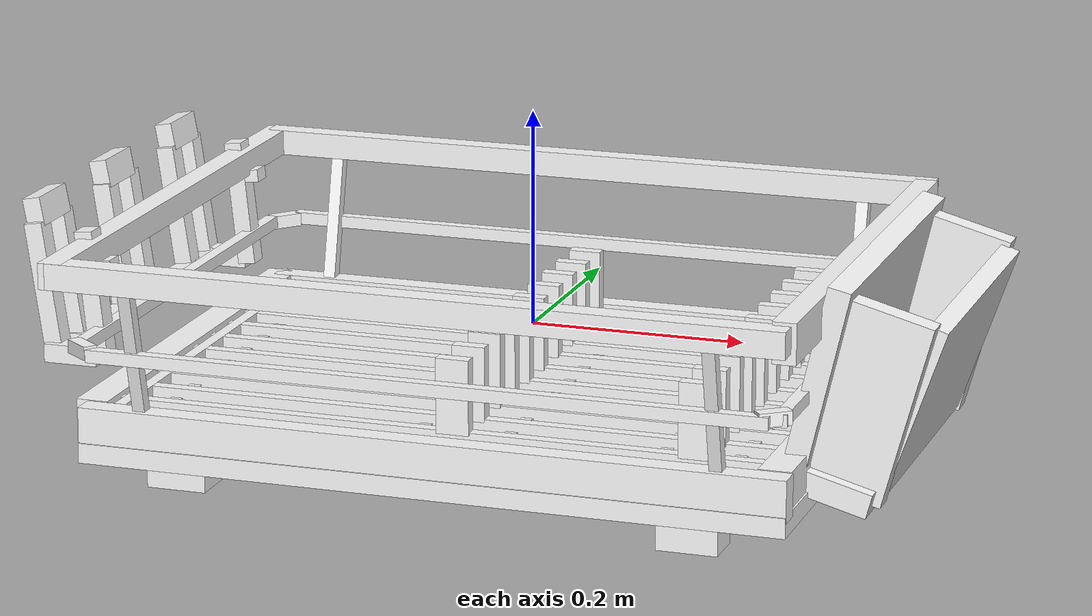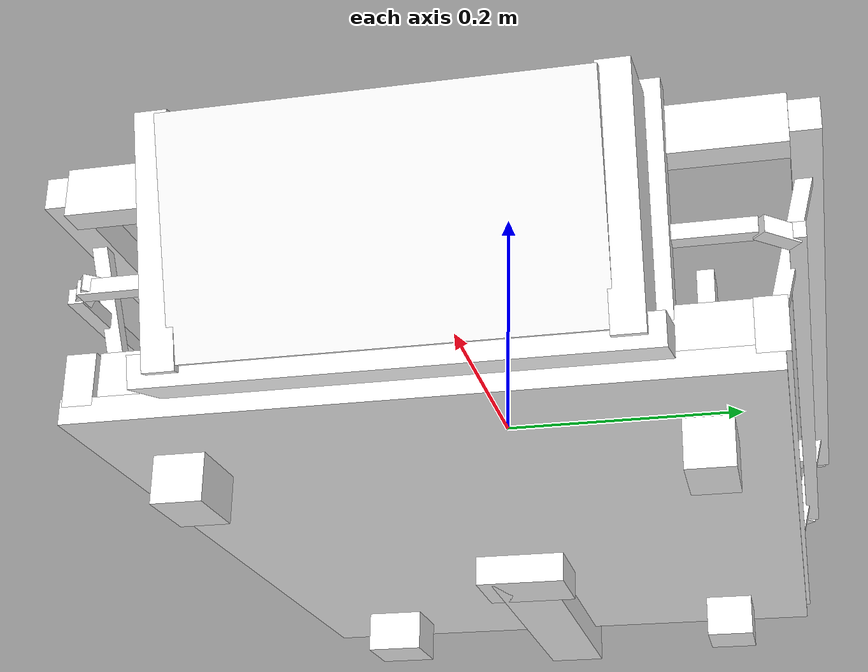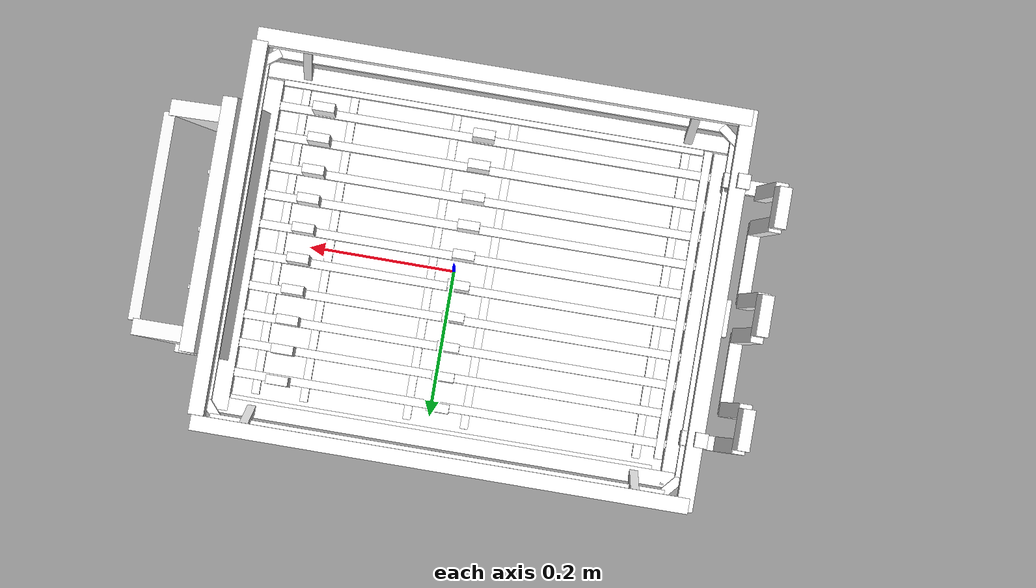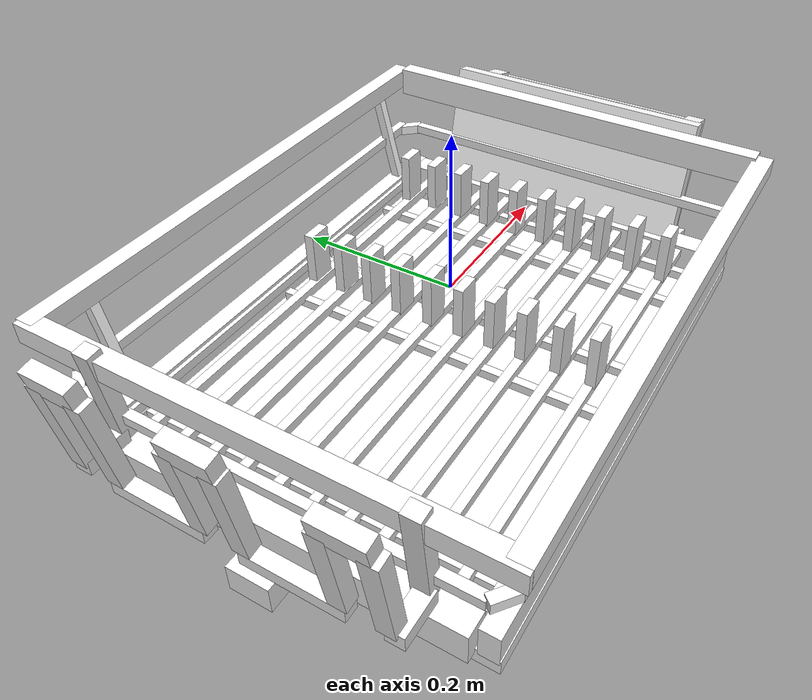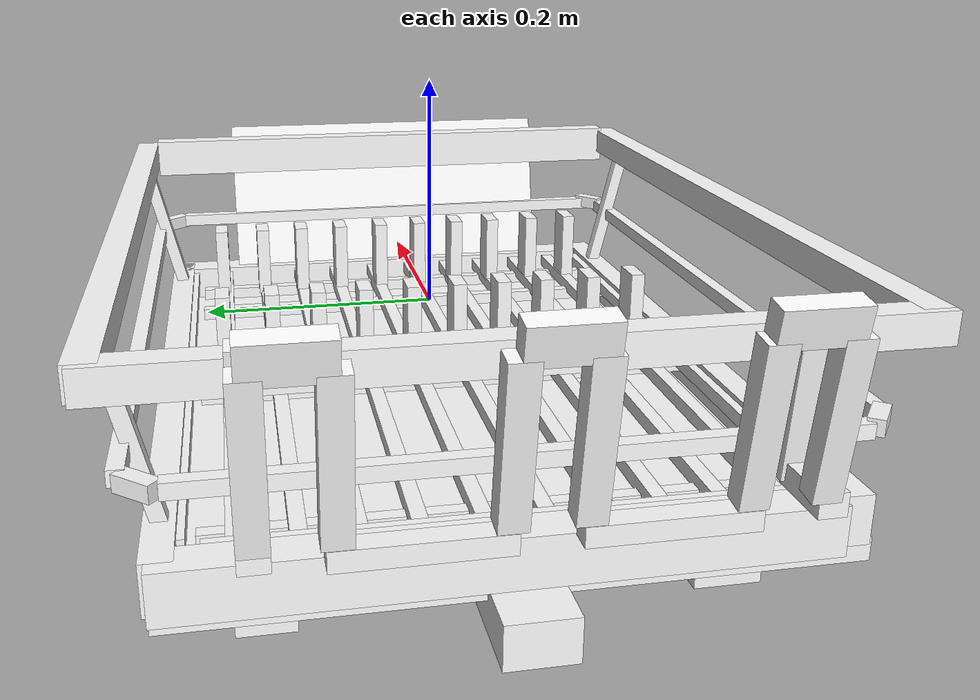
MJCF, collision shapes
<?xml version='1.0' encoding='utf-8'?>
<mujoco model="model">
  <option timestep="0.002" gravity="0.0 0.0 -9.81" />
  <compiler angle="radian" />
  <asset>
    <mesh file="visual/DishRack047.obj" name="DishRack047_vis" />
    <texture file="visual/T_BC001.png" name="DishRack047_material" type="2d" />
    <material name="DishRack047_material" rgba="1 1 1 1.0" texture="DishRack047_material" shininess="0.4472135901451111" specular="0.3103448502657381" />
  </asset>
  <default>
    <default class="visual">
      <geom conaffinity="0" contype="0" group="1" type="mesh" />
    </default>
    <default class="collision">
      <geom group="0" rgba="1 1 1 0.25" density="1.0" solref="0.004 1" solimp="0.998 0.998 0.001" />
    </default>
    <default class="spawn">
      <geom group="0" rgba="1 1 1 0.5" contype="0" conaffinity="0" />
      <site group="0" rgba="1 1 1 0.5" />
    </default>
    <default class="region">
      <geom group="1" conaffinity="0" contype="0" rgba="0 1 0 0" mass="0" />
    </default>
  </default>
  <worldbody>
    <body>
      <body name="object">
        <geom mesh="DishRack047_vis" type="mesh" solimp="0.998 0.998 0.001" solref="0.001 1" friction="0.95 0.3 0.1" class="visual" material="DishRack047_material" />
        <geom type="box" pos="-0.01842450 -0.25464301 0.01038383" size="0.31351131200790405 0.005834067706018686 0.005834091920405626" quat="1.0 0.0 0.0 0.0" class="collision" />
        <geom type="box" pos="-0.01842450 0.25205340 0.01038383" size="0.31351131200790405 0.005834067706018686 0.005834091920405626" quat="1.0 0.0 0.0 0.0" class="collision" />
        <geom type="box" pos="-0.02107439 -0.19016211 -0.05196834" size="0.3136478066444397 0.005834067706018686 0.005834091920405626" quat="1.0 0.0 0.0 0.0" class="collision" />
        <geom type="box" pos="-0.02107439 -0.14864702 -0.05196834" size="0.3136478066444397 0.005834067706018686 0.005834091920405626" quat="1.0 0.0 0.0 0.0" class="collision" />
        <geom type="box" pos="-0.02107439 -0.10536533 -0.05196834" size="0.3136478066444397 0.005834067706018686 0.005834091920405626" quat="1.0 0.0 0.0 0.0" class="collision" />
        <geom type="box" pos="-0.02107439 -0.06561684 -0.05196834" size="0.3136478066444397 0.005834067706018686 0.005834091920405626" quat="1.0 0.0 0.0 0.0" class="collision" />
        <geom type="box" pos="-0.02107439 -0.02410176 -0.05196834" size="0.3136478066444397 0.005834067706018686 0.005834091920405626" quat="1.0 0.0 0.0 0.0" class="collision" />
        <geom type="box" pos="-0.02107439 0.01917992 -0.05196834" size="0.3136478066444397 0.005834067706018686 0.005834091920405626" quat="1.0 0.0 0.0 0.0" class="collision" />
        <geom type="box" pos="-0.02107439 0.06246161 -0.05196834" size="0.3136478066444397 0.005834067706018686 0.005834091920405626" quat="1.0 0.0 0.0 0.0" class="collision" />
        <geom type="box" pos="-0.02107439 0.10309339 -0.05196834" size="0.3136478066444397 0.005834067706018686 0.005834091920405626" quat="1.0 0.0 0.0 0.0" class="collision" />
        <geom type="box" pos="-0.02107439 0.14284188 -0.05196834" size="0.3136478066444397 0.005834067706018686 0.005834091920405626" quat="1.0 0.0 0.0 0.0" class="collision" />
        <geom type="box" pos="-0.02107439 0.18435696 -0.05196834" size="0.3136478066444397 0.005834067706018686 0.005834091920405626" quat="1.0 0.0 0.0 0.0" class="collision" />
        <geom type="box" pos="-0.01842450 0.22145555 -0.05196834" size="0.29465436935424805 0.005834067706018686 0.005834090523421764" quat="1.0 0.0 0.0 0.0" class="collision" />
        <geom type="box" pos="-0.01842450 -0.22461077 -0.05196834" size="0.29465436935424805 0.005834067706018686 0.005834090523421764" quat="1.0 0.0 0.0 0.0" class="collision" />
        <geom type="box" pos="-0.34883966 -0.00535722 0.01038383" size="0.005834077950567007 0.23112908005714417 0.005834108684211969" quat="1.0 0.0 0.0 0.0" class="collision" />
        <geom type="box" pos="0.30227233 -0.00996897 0.01038383" size="0.005834077950567007 0.2374911606311798 0.005834109149873257" quat="1.0 0.0 0.0 0.0" class="collision" />
        <geom type="box" pos="-0.31975456 -0.00996897 -0.05151568" size="0.005498509854078293 0.21582086384296417 0.005498501472175121" quat="1.0 0.0 0.0 0.0" class="collision" />
        <geom type="box" pos="0.28354795 -0.00996897 -0.05151568" size="0.005498509854078293 0.1907721310853958 0.005498520564287901" quat="1.0 0.0 0.0 0.0" class="collision" />
        <geom type="box" pos="-0.01842450 -0.00529234 -0.08422913" size="0.3273940682411194 0.2449447512626648 0.009237930178642273" quat="1.0 0.0 0.0 0.0" class="collision" />
        <geom type="box" pos="-0.22997113 -0.00347817 -0.10153956" size="0.15821781754493713 0.02618318237364292 0.017212456092238426" quat="1.0 0.0 0.0 0.0" class="collision" />
        <geom type="box" pos="-0.35655807 -0.00347817 0.08507566" size="0.010985566303133965 0.27316945791244507 0.012074650265276432" quat="1.0 0.0 0.0 0.0" class="collision" />
        <geom type="box" pos="0.30725728 -0.00347817 0.08171169" size="0.010746297426521778 0.25485026836395264 0.018494954332709312" quat="1.0 0.0 0.0 0.0" class="collision" />
        <geom type="box" pos="-0.02417593 -0.26538877 0.08507566" size="0.33746522665023804 0.011394654400646687 0.01207468006759882" quat="1.0 0.0 0.0 0.0" class="collision" />
        <geom type="box" pos="-0.02417593 0.26211025 0.08507566" size="0.33746442198753357 0.010648323222994804 0.01207468006759882" quat="1.0 0.0 0.0 0.0" class="collision" />
        <geom type="box" pos="-0.00915554 -0.19201827 -0.01398426" size="0.015245569869875908 0.00621932465583086 0.034603312611579895" quat="1.0 0.0 0.0 0.0" class="collision" />
        <geom type="box" pos="-0.00915554 -0.14936109 -0.01398426" size="0.015245569869875908 0.00621932465583086 0.034603316336870193" quat="1.0 0.0 0.0 0.0" class="collision" />
        <geom type="box" pos="-0.00915554 -0.10518305 -0.01398426" size="0.015245569869875908 0.00621932465583086 0.034603316336870193" quat="1.0 0.0 0.0 0.0" class="collision" />
        <geom type="box" pos="-0.00915554 -0.06500799 -0.01398426" size="0.015245569869875908 0.00621932465583086 0.03460332006216049" quat="1.0 0.0 0.0 0.0" class="collision" />
        <geom type="box" pos="-0.00915554 -0.02404182 -0.01398426" size="0.015245569869875908 0.00621932465583086 0.03460332006216049" quat="1.0 0.0 0.0 0.0" class="collision" />
        <geom type="box" pos="-0.00915554 0.01795158 -0.01398426" size="0.015245569869875908 0.00621932465583086 0.03460332378745079" quat="1.0 0.0 0.0 0.0" class="collision" />
        <geom type="box" pos="-0.00915554 0.06150653 -0.01398426" size="0.015245569869875908 0.00621932465583086 0.03460332378745079" quat="1.0 0.0 0.0 0.0" class="collision" />
        <geom type="box" pos="-0.00915554 0.10345149 -0.01398426" size="0.015245569869875908 0.00621932465583086 0.03460332751274109" quat="1.0 0.0 0.0 0.0" class="collision" />
        <geom type="box" pos="-0.00915554 0.14436329 -0.01398426" size="0.015245569869875908 0.00621932465583086 0.03460332751274109" quat="1.0 0.0 0.0 0.0" class="collision" />
        <geom type="box" pos="-0.00915554 0.18726097 -0.01398426" size="0.015245569869875908 0.00621932465583086 0.03460333123803139" quat="1.0 0.0 0.0 0.0" class="collision" />
        <geom type="box" pos="0.21316355 -0.19201827 -0.01398426" size="0.015245569869875908 0.00621932465583086 0.03460333123803139" quat="1.0 0.0 0.0 0.0" class="collision" />
        <geom type="box" pos="0.21316355 -0.14936109 -0.01398426" size="0.015245569869875908 0.00621932465583086 0.034603334963321686" quat="1.0 0.0 0.0 0.0" class="collision" />
        <geom type="box" pos="0.21316355 -0.10518305 -0.01398426" size="0.015245569869875908 0.00621932465583086 0.034603338688611984" quat="1.0 0.0 0.0 0.0" class="collision" />
        <geom type="box" pos="0.21316355 -0.06500799 -0.01398426" size="0.015245569869875908 0.00621932465583086 0.034603338688611984" quat="1.0 0.0 0.0 0.0" class="collision" />
        <geom type="box" pos="0.21316355 -0.02404182 -0.01398426" size="0.015245569869875908 0.00621932465583086 0.03460334241390228" quat="1.0 0.0 0.0 0.0" class="collision" />
        <geom type="box" pos="0.21316355 0.01795158 -0.01398426" size="0.015245569869875908 0.00621932465583086 0.03460334241390228" quat="1.0 0.0 0.0 0.0" class="collision" />
        <geom type="box" pos="0.21316355 0.06150653 -0.01398426" size="0.015245569869875908 0.00621932465583086 0.03460334613919258" quat="1.0 0.0 0.0 0.0" class="collision" />
        <geom type="box" pos="0.21316355 0.10345149 -0.01398426" size="0.015245569869875908 0.00621932465583086 0.03460334613919258" quat="1.0 0.0 0.0 0.0" class="collision" />
        <geom type="box" pos="0.21316355 0.14436329 -0.01398426" size="0.015245569869875908 0.00621932465583086 0.03460334986448288" quat="1.0 0.0 0.0 0.0" class="collision" />
        <geom type="box" pos="0.21316355 0.18726097 -0.01398426" size="0.015245569869875908 0.00621932465583086 0.03460334986448288" quat="1.0 0.0 0.0 0.0" class="collision" />
        <geom type="box" pos="0.31265061 -0.00266849 0.01948240" size="0.010746296495199203 0.17341545224189758 0.09098540246486664" quat="0.9935942888259888 -6.35997176605174e-16 0.11300608515739441 1.5183358570425298e-08" class="collision" />
        <geom type="box" pos="0.38699959 -0.00266848 -0.00431848" size="0.008785261772572994 0.1425880491733551 0.08074815571308136" quat="0.9861871004104614 -2.8458485906907895e-15 0.16563507914543152 2.2254532439092145e-08" class="collision" />
        <geom type="box" pos="0.33145545 -0.00266850 -0.07450730" size="0.03273314610123634 0.17341545224189758 0.011176123283803463" quat="0.9911223649978638 -1.0421047673558637e-16 0.13295304775238037 1.7863408530160996e-08" class="collision" />
        <geom type="box" pos="0.35299058 -0.15169284 0.00486462" size="0.04007335007190704 0.011243214830756187 0.08515150845050812" quat="0.9913440346717834 -6.42913624135979e-16 0.13128969073295593 1.763993040526657e-08" class="collision" />
        <geom type="box" pos="0.21046819 0.18493499 -0.10977878" size="0.028036130592226982 0.017754610627889633 0.02026299759745598" quat="1.0 0.0 0.0 0.0" class="collision" />
        <geom type="box" pos="0.21046819 -0.19190778 -0.10977878" size="0.028036070987582207 0.01948544569313526 0.02026299759745598" quat="1.0 0.0 0.0 0.0" class="collision" />
        <geom type="box" pos="-0.27673720 0.16655879 -0.10977878" size="0.028036125004291534 0.021309172734618187 0.020263036713004112" quat="1.0 0.0 0.0 0.0" class="collision" />
        <geom type="box" pos="-0.27673720 -0.16643467 -0.10977878" size="0.028036070987582207 0.025732656940817833 0.020262978971004486" quat="1.0 0.0 0.0 0.0" class="collision" />
        <geom type="box" pos="-0.35714425 0.17262568 0.04343507" size="0.008610651828348637 0.009983190335333347 0.06046972796320915" quat="0.9985668063163757 2.443151657511558e-16 -0.05351945385336876 -7.190811501800454e-09" class="collision" />
        <geom type="box" pos="-0.40613456 0.17262568 0.04897939" size="0.008610651828348637 0.009983190335333347 0.057607252150774" quat="0.9973001480102539 -2.903279277399203e-16 -0.07343317568302155 -9.866401917690837e-09" class="collision" />
        <geom type="box" pos="-0.37831818 0.17262568 -0.01258360" size="0.025552911683917046 0.00998320709913969 0.008610664866864681" quat="1.0 0.0 0.0 0.0" class="collision" />
        <geom type="box" pos="-0.41618522 0.14962296 0.11469330" size="0.008610651828348637 0.02811484783887863 0.013195523992180824" quat="0.9956201910972595 -1.6473252929901283e-16 -0.09349023550748825 -1.2561237383579282e-08" class="collision" />
        <geom type="box" pos="-0.40613456 0.12484531 0.04897939" size="0.008610651828348637 0.009983190335333347 0.057607252150774" quat="0.9973001480102539 -2.903279277399203e-16 -0.07343317568302155 -9.866401917690837e-09" class="collision" />
        <geom type="box" pos="-0.40613456 0.02236883 0.04897939" size="0.008610651828348637 0.009983190335333347 0.057607252150774" quat="0.9973001480102539 -2.903279277399203e-16 -0.07343317568302155 -9.866401917690837e-09" class="collision" />
        <geom type="box" pos="-0.39767398 0.07488114 -0.01672854" size="0.008610651828348637 0.05678661912679672 0.007192002609372139" quat="1.0 0.0 0.0 0.0" class="collision" />
        <geom type="box" pos="-0.40613456 -0.02541153 0.04897939" size="0.008610651828348637 0.009983190335333347 0.057607252150774" quat="0.9973001480102539 -2.903279277399203e-16 -0.07343317568302155 -9.866401917690837e-09" class="collision" />
        <geom type="box" pos="-0.40613456 -0.12752115 0.04897939" size="0.008610651828348637 0.009983190335333347 0.057607252150774" quat="0.9973001480102539 -2.903279277399203e-16 -0.07343317568302155 -9.866401917690837e-09" class="collision" />
        <geom type="box" pos="-0.41618522 -0.15052385 0.11469330" size="0.008610651828348637 0.02811484783887863 0.013195523992180824" quat="0.9956201910972595 -1.6473252929901283e-16 -0.09349023550748825 -1.2561237383579282e-08" class="collision" />
        <geom type="box" pos="-0.40613456 -0.17530151 0.04897939" size="0.008610651828348637 0.009983190335333347 0.057607252150774" quat="0.9973001480102539 -2.903279277399203e-16 -0.07343317568302155 -9.866401917690837e-09" class="collision" />
        <geom type="box" pos="-0.39767398 -0.07832395 -0.01672854" size="0.008610651828348637 0.05678661912679672 0.007192003075033426" quat="1.0 0.0 0.0 0.0" class="collision" />
        <geom type="box" pos="-0.41618522 -0.00429389 0.11469330" size="0.008610651828348637 0.02811484783887863 0.013195523992180824" quat="0.9956201910972595 -1.6473252929901283e-16 -0.09349023550748825 -1.2561237383579282e-08" class="collision" />
        <geom type="box" pos="-0.01842450 0.23217625 -0.06131176" size="0.32739579677581787 0.011079895310103893 0.01938522420823574" quat="1.0 0.0 0.0 0.0" class="collision" />
        <geom type="box" pos="-0.34280427 0.00752206 -0.06131176" size="0.01505579985678196 0.23189085721969604 0.019385213032364845" quat="1.0 0.0 0.0 0.0" class="collision" />
        <geom type="box" pos="-0.01842450 -0.23782012 -0.06131176" size="0.32739579677581787 0.011079895310103893 0.01938522420823574" quat="1.0 0.0 0.0 0.0" class="collision" />
        <geom type="box" pos="0.29203026 0.00752206 -0.06131176" size="0.015055803582072258 0.23189088702201843 0.019385214895009995" quat="1.0 0.0 0.0 0.0" class="collision" />
        <geom type="box" pos="-0.28970520 -0.00996897 -0.06018782" size="0.005498525220900774 0.2196267694234848 0.00549851730465889" quat="1.0 0.0 0.0 0.0" class="collision" />
        <geom type="box" pos="-0.04870909 -0.00996897 -0.06018782" size="0.005498526152223349 0.219626784324646 0.005498517770320177" quat="1.0 0.0 0.0 0.0" class="collision" />
        <geom type="box" pos="0.03162390 -0.00996897 -0.06018782" size="0.005498526617884636 0.2196267992258072 0.005498518235981464" quat="1.0 0.0 0.0 0.0" class="collision" />
        <geom type="box" pos="0.17612565 -0.00996897 -0.06018782" size="0.005498527083545923 0.21962682902812958 0.005498518701642752" quat="1.0 0.0 0.0 0.0" class="collision" />
        <geom type="box" pos="-0.37831818 -0.18181275 -0.01258360" size="0.025552911683917046 0.009983194060623646 0.00861065648496151" quat="1.0 0.0 0.0 0.0" class="collision" />
        <geom type="box" pos="-0.35714425 -0.17901228 0.04343507" size="0.008610651828348637 0.009983190335333347 0.06046972796320915" quat="0.9985668063163757 2.443151657511558e-16 -0.05351945385336876 -7.190811501800454e-09" class="collision" />
        <geom type="box" pos="0.35299058 0.14837971 0.00486462" size="0.04007335007190704 0.011243214830756187 0.08515150845050812" quat="0.9913440346717834 -6.42913624135979e-16 0.13128969073295593 1.763993040526657e-08" class="collision" />
        <geom type="box" pos="0.24458630 0.24460609 0.01038383" size="0.005834067706018686 0.005834067240357399 0.08086064457893372" quat="7.700290893808415e-08 -8.446813026807831e-09 0.9932133555412292 -0.11630657315254211" class="collision" />
        <geom type="box" pos="-0.28914700 0.24460609 0.01038383" size="0.005834067706018686 0.005834067240357399 0.08086064457893372" quat="7.700290893808415e-08 -8.446813026807831e-09 0.9932133555412292 -0.11630657315254211" class="collision" />
        <geom type="box" pos="-0.09881835 -0.00347817 -0.10153956" size="0.03296058624982834 0.03873896226286888 0.01721249893307686" quat="1.0 0.0 0.0 0.0" class="collision" />
        <geom type="box" pos="0.24458630 -0.24946092 0.01038383" size="0.005834067706018686 0.005834067240357399 0.08086064457893372" quat="7.700290893808415e-08 8.446813026807831e-09 0.9932133555412292 0.11630656570196152" class="collision" />
        <geom type="box" pos="-0.28914700 -0.24946092 0.01038383" size="0.005834067706018686 0.005834067240357399 0.08086064457893372" quat="7.700290893808415e-08 8.446813026807831e-09 0.9932133555412292 0.11630656570196152" class="collision" />
        <geom type="box" pos="-0.34070678 -0.24628731 0.01249856" size="0.006219321861863136 0.015245568007230759 0.0062602064572274685" quat="0.8977609872817993 0.0 0.0 0.4404829740524292" class="collision" />
        <geom type="box" pos="-0.34070678 0.23888917 0.00928906" size="0.006219321396201849 0.015245568007230759 0.0062602064572274685" quat="0.3487342298030853 0.0 0.0 0.9372216463088989" class="collision" />
        <geom type="box" pos="0.29576682 -0.24628733 0.01249856" size="0.006219321861863136 0.015245568007230759 0.0062602064572274685" quat="0.8977609872817993 0.0 -0.0 -0.4404829740524292" class="collision" />
        <geom type="box" pos="0.29576682 0.23888917 0.00928906" size="0.006219321861863136 0.015245567075908184 0.0062602064572274685" quat="0.3487343490123749 0.0 -0.0 -0.9372216463088989" class="collision" />
        <geom type="box" pos="0.24382924 -0.00996897 -0.06018782" size="0.00549852941185236 0.21962688863277435 0.005498519632965326" quat="1.0 0.0 0.0 0.0" class="collision" />
        <geom type="box" pos="0.33960833 -0.08327068 -0.06142320" size="0.020395083352923393 0.00299147074110806 0.01329437643289566" quat="0.9913440346717834 -6.42913624135979e-16 0.13128969073295593 1.763993040526657e-08" class="collision" />
        <geom type="box" pos="0.33960833 -0.00268905 -0.06142320" size="0.020395083352923393 0.00299147074110806 0.01329437643289566" quat="0.9913440346717834 -6.42913624135979e-16 0.13128969073295593 1.763993040526657e-08" class="collision" />
        <geom type="box" pos="0.33960833 0.07833029 -0.06142320" size="0.020395083352923393 0.00299147074110806 0.01329437643289566" quat="0.9913440346717834 -6.42913624135979e-16 0.13128969073295593 1.763993040526657e-08" class="collision" />
        <geom type="box" pos="-0.34599225 0.17262568 0.07198422" size="0.008610650897026062 0.009983190335333347 0.006017397623509169" quat="0.9985668063163757 2.443151657511558e-16 -0.05351945385336876 -7.190811501800454e-09" class="collision" />
        <geom type="box" pos="-0.34599225 -0.17901228 0.07198422" size="0.008610650897026062 0.009983190335333347 0.006017397623509169" quat="0.9985668063163757 2.443151657511558e-16 -0.05351945385336876 -7.190811501800454e-09" class="collision" />
        <geom class="region" name="reg_int_0" type="box" pos="-0.18238368000000002 -0.0029950450000000017 0.039472560000000004" size="0.15476364 0.226692765 0.07952276" />
        <geom class="region" name="reg_int_1" type="box" pos="0.10192303500000001 -0.0029950450000000017 0.039472565" size="0.092351265 0.226692765 0.079522755" />
        <geom size="0.42383401 0.27448298 0.13320497" pos="-0.0 0.0 0.0" name="reg_bbox" class="region" type="box" quat="1.0 0.0 0.0 0.0" />
        </body>
    </body>
  </worldbody>
  <actuator />
</mujoco>
